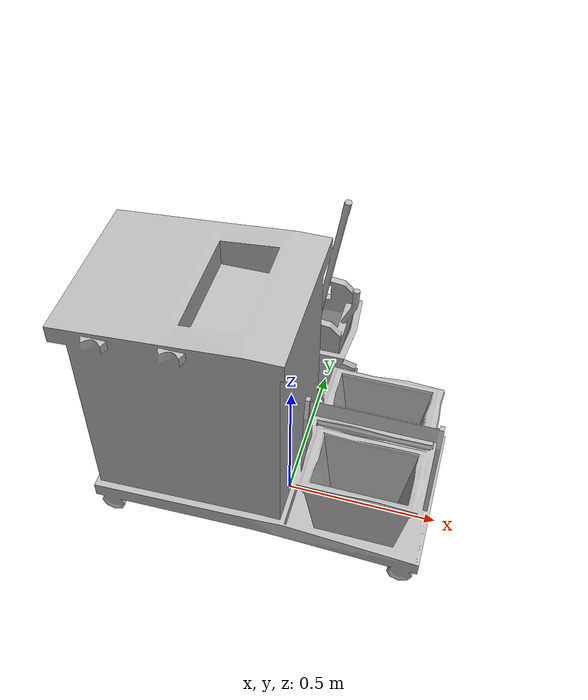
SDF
<sdf version="1.5">
  <model name="CleaningSection">
    <link name="link">
      <pose>0 0 0 0 0 0</pose>

        <visual name="visual">
          <geometry>
            <mesh><uri>model://CleaningSection/meshes/CleaningSection.obj</uri></mesh>
          </geometry>
        </visual>

        <collision name="collision">
          <geometry>
            <mesh><uri>model://CleaningSection/meshes/CleaningSection.obj</uri></mesh>
          </geometry>
        </collision>

    </link>
  </model>
</sdf>
